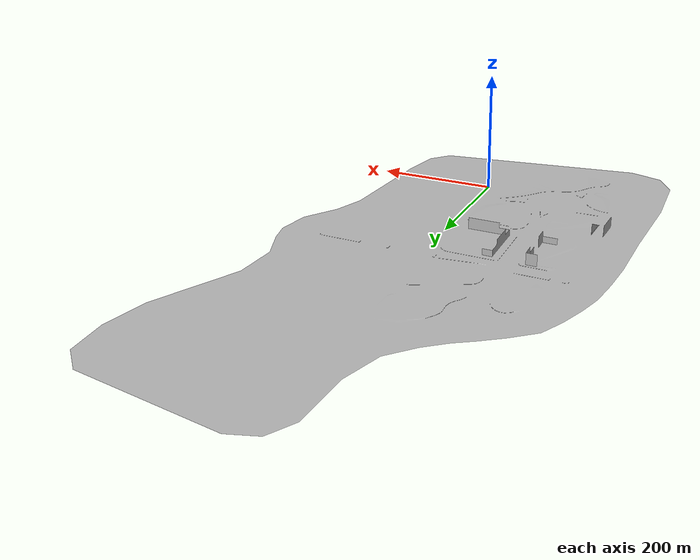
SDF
<sdf version="1.6">
 <world name="default">
  <light name="sun" type="directional">
   <pose>0 0 10 0 -0 0</pose>
   <diffuse>0.8 0.8 0.8 1</diffuse>
   <specular>0.2 0.2 0.2 1</specular>
   <attenuation>
    <range>1000</range>
    <constant>0.9</constant>
    <linear>0.01</linear>
    <quadratic>0.001</quadratic>
   </attenuation>
   <direction>-0.5 0.1 -0.9</direction>
  </light>
  <gravity>0 0 -9.8</gravity>
  <magnetic_field>6e-06 2.3e-05 -4.2e-05</magnetic_field>
  <atmosphere type="adiabatic"/>
  <physics name="default_physics" default="0" type="ode">
   <max_step_size>0.001</max_step_size>
   <real_time_factor>1</real_time_factor>
   <real_time_update_rate>1000</real_time_update_rate>
  </physics>
  <scene><ambient>0.4 0.4 0.4 1</ambient><background>0.7 0.7 0.7 1</background><shadows>1</shadows></scene>
  <audio><device>default</device></audio>
  <spherical_coordinates>
   <surface_model>EARTH_WGS84</surface_model>
   <latitude_deg>0</latitude_deg>
   <longitude_deg>0</longitude_deg>
   <elevation>0</elevation>
   <heading_deg>0</heading_deg>
  </spherical_coordinates>
  <model name="mcity">
   <static>1</static>
   <link name="link">
    <collision name="collision">
     <geometry><mesh><scale>0.254 0.254 0.254</scale><uri>model://mcity/meshes/mcity.obj</uri></mesh></geometry>
    </collision>
    <visual name="visual">
     <geometry><mesh><scale>0.254 0.254 0.254</scale><uri>model://mcity/meshes/mcity.obj</uri></mesh></geometry>
    </visual>
   </link>
   <pose>-36.9822 288.267 0 0 -0 0</pose>
  </model>
 </world>
</sdf>
